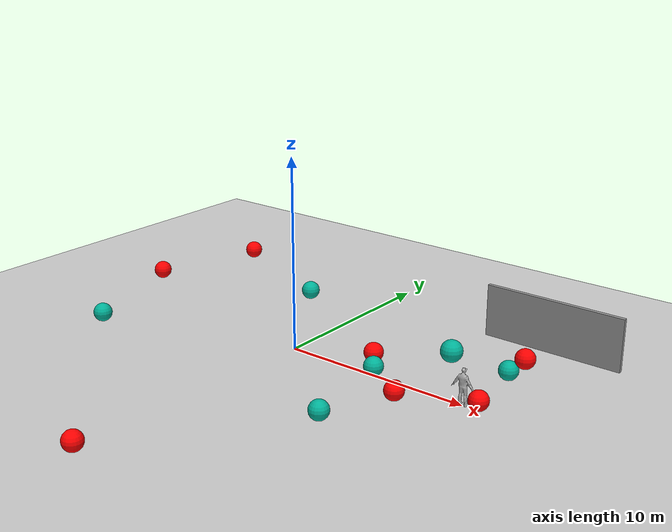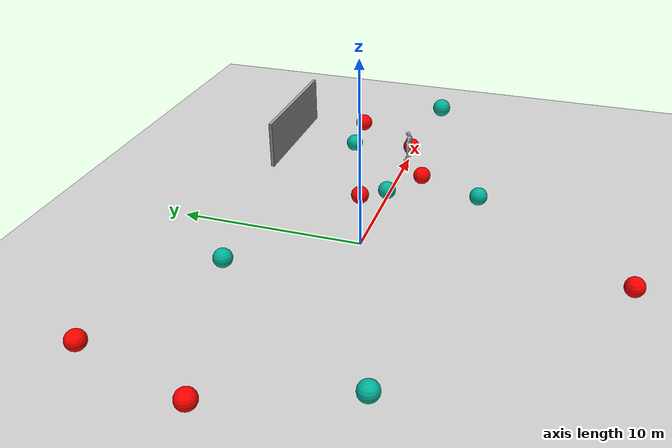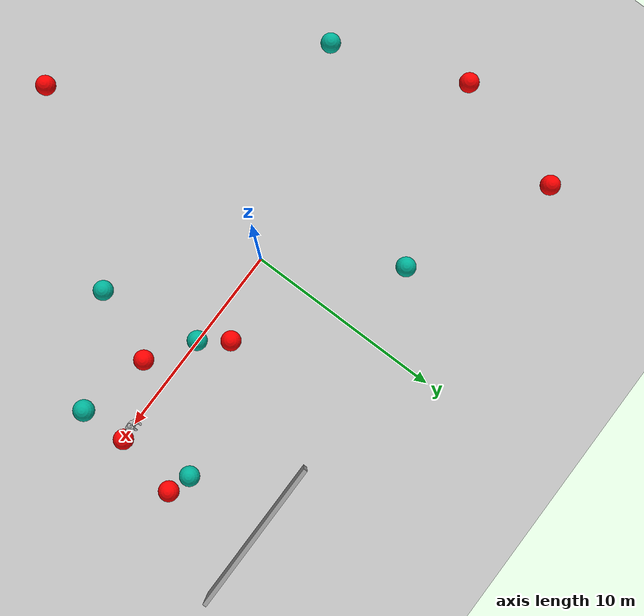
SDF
<sdf version="1.6">
 <world name="default">
  <light name="sun" type="directional">
   <pose>0 0 10 0 -0 0</pose>
   <diffuse>0.8 0.8 0.8 1</diffuse>
   <specular>0.2 0.2 0.2 1</specular>
   <attenuation>
    <range>1000</range>
    <constant>0.9</constant>
    <linear>0.01</linear>
    <quadratic>0.001</quadratic>
   </attenuation>
   <direction>-0.5 0.1 -0.9</direction>
  </light>
  <model name="ground_plane">
   <static>1</static>
   <link name="link">
    <collision name="collision">
     <geometry><plane><normal>0 0 1</normal><size>100 100</size></plane></geometry>
     <surface><friction><ode><mu>100</mu><mu2>50</mu2></ode></friction></surface>
    </collision>
    <visual name="visual">
     <cast_shadows>0</cast_shadows>
     <geometry><plane><normal>0 0 1</normal><size>100 100</size></plane></geometry>
     <material>
      <script><uri>file://media/materials/scripts/gazebo.material</uri><name>Gazebo/Grey</name></script>
     </material>
    </visual>
    <velocity_decay><linear>0</linear><angular>0</angular></velocity_decay>
   </link>
  </model>
  <physics name="default_physics" default="0" type="ode">
   <max_step_size>0.001</max_step_size>
   <real_time_factor>1</real_time_factor>
   <real_time_update_rate>1000</real_time_update_rate>
  </physics>
  <scene><ambient>0.4 0.4 0.4 1</ambient><background>0.7 0.7 0.7 1</background><shadows>1</shadows></scene>
  <model name="grey_wall">
   <static>1</static>
   <link name="link">
    <pose>0 0 1.4 0 -0 0</pose>
    <collision name="collision"><geometry><box><size>7.5 0.2 2.8</size></box></geometry></collision>
    <visual name="visual">
     <cast_shadows>0</cast_shadows>
     <geometry><box><size>7.5 0.2 2.8</size></box></geometry>
     <material>
      <script>
       <uri>model://grey_wall/materials/scripts</uri>
       <uri>model://grey_wall/materials/textures</uri>
       <name>vrc/grey_wall</name>
      </script>
     </material>
    </visual>
    <velocity_decay><linear>0</linear><angular>0</angular></velocity_decay>
   </link>
   <pose>10.402 7.71769 0 0 -0 0</pose>
  </model>
  <model name="worker1">
   <static>1</static>
   <link name="worker1">
    <collision name="collision">
     <geometry><mesh><uri>model://worker1/worker1.dae</uri><scale>1 1 1</scale></mesh></geometry>
    </collision>
    <visual name="visual">
     <geometry><mesh><uri>model://worker1/worker1.dae</uri><scale>1 1 1</scale></mesh></geometry>
    </visual>
    <velocity_decay><linear>0</linear><angular>0</angular></velocity_decay>
   </link>
   <pose>10 0 0 0 -0 0</pose>
  </model>
  <gravity>0 0 -9.8</gravity>
  <magnetic_field>6e-06 2.3e-05 -4.2e-05</magnetic_field>
  <atmosphere type="adiabatic"/>
  <spherical_coordinates>
   <surface_model>EARTH_WGS84</surface_model>
   <latitude_deg>0</latitude_deg>
   <longitude_deg>0</longitude_deg>
   <elevation>0</elevation>
   <heading_deg>0</heading_deg>
  </spherical_coordinates>
  <model name="Target_1">
   <link name="link">
    <inertial>
     <mass>1</mass>
     <inertia><ixx>0.1</ixx><ixy>0</ixy><ixz>0</ixz><iyy>0.1</iyy><iyz>0</iyz><izz>0.1</izz></inertia>
    </inertial>
    <visual name="visual">
     <geometry><sphere><radius>0.5</radius></sphere></geometry>
     <material>
      <script><name>Gazebo/Grey</name><uri>file://media/materials/scripts/gazebo.material</uri></script>
      <ambient>0 1 0 1</ambient>
      <diffuse>0 0.7 0.6 1</diffuse>
      <specular>0.01 0.01 0.01 1</specular>
      <emissive>0 0 0 1</emissive>
      <shader type="vertex"><normal_map>__default__</normal_map></shader>
     </material>
    </visual>
    <collision name="collision">
     <geometry><sphere><radius>0.5</radius></sphere></geometry>
     <surface>
      <friction>
       <ode><mu>1</mu><mu2>1</mu2><fdir1>0 0 0</fdir1><slip1>0</slip1><slip2>0</slip2></ode>
       <torsional>
        <coefficient>1</coefficient>
        <patch_radius>0</patch_radius>
        <surface_radius>0</surface_radius>
        <use_patch_radius>1</use_patch_radius>
        <ode><slip>0</slip></ode>
       </torsional>
      </friction>
      <bounce><restitution_coefficient>0</restitution_coefficient><threshold>1e+06</threshold></bounce>
      <contact>
       <collide_without_contact>0</collide_without_contact>
       <collide_without_contact_bitmask>1</collide_without_contact_bitmask>
       <collide_bitmask>1</collide_bitmask>
       <ode>
        <soft_cfm>0</soft_cfm>
        <soft_erp>0.2</soft_erp>
        <kp>1e+13</kp>
        <kd>1</kd>
        <max_vel>0.01</max_vel>
        <min_depth>0</min_depth>
       </ode>
       <bullet>
        <split_impulse>1</split_impulse>
        <split_impulse_penetration_threshold>-0.01</split_impulse_penetration_threshold>
        <soft_cfm>0</soft_cfm>
        <soft_erp>0.2</soft_erp>
        <kp>1e+13</kp>
        <kd>1</kd>
       </bullet>
      </contact>
     </surface>
    </collision>
   </link>
   <static>0</static>
   <pose>5.0 0.0 0.5 0 -0 0</pose>
  </model>
  <model name="Target_2">
   <link name="link">
    <inertial>
     <mass>1</mass>
     <inertia><ixx>0.1</ixx><ixy>0</ixy><ixz>0</ixz><iyy>0.1</iyy><iyz>0</iyz><izz>0.1</izz></inertia>
    </inertial>
    <visual name="visual">
     <geometry><sphere><radius>0.5</radius></sphere></geometry>
     <material>
      <script><name>Gazebo/Grey</name><uri>file://media/materials/scripts/gazebo.material</uri></script>
      <ambient>0 1 0 1</ambient>
      <diffuse>0 0.7 0.6 1</diffuse>
      <specular>0.01 0.01 0.01 1</specular>
      <emissive>0 0 0 1</emissive>
      <shader type="vertex"><normal_map>__default__</normal_map></shader>
     </material>
    </visual>
    <collision name="collision">
     <geometry><sphere><radius>0.5</radius></sphere></geometry>
     <surface>
      <friction>
       <ode><mu>1</mu><mu2>1</mu2><fdir1>0 0 0</fdir1><slip1>0</slip1><slip2>0</slip2></ode>
       <torsional>
        <coefficient>1</coefficient>
        <patch_radius>0</patch_radius>
        <surface_radius>0</surface_radius>
        <use_patch_radius>1</use_patch_radius>
        <ode><slip>0</slip></ode>
       </torsional>
      </friction>
      <bounce><restitution_coefficient>0</restitution_coefficient><threshold>1e+06</threshold></bounce>
      <contact>
       <collide_without_contact>0</collide_without_contact>
       <collide_without_contact_bitmask>1</collide_without_contact_bitmask>
       <collide_bitmask>1</collide_bitmask>
       <ode>
        <soft_cfm>0</soft_cfm>
        <soft_erp>0.2</soft_erp>
        <kp>1e+13</kp>
        <kd>1</kd>
        <max_vel>0.01</max_vel>
        <min_depth>0</min_depth>
       </ode>
       <bullet>
        <split_impulse>1</split_impulse>
        <split_impulse_penetration_threshold>-0.01</split_impulse_penetration_threshold>
        <soft_cfm>0</soft_cfm>
        <soft_erp>0.2</soft_erp>
        <kp>1e+13</kp>
        <kd>1</kd>
       </bullet>
      </contact>
     </surface>
    </collision>
   </link>
   <static>0</static>
   <pose>-3.87054 5.85221 0.5 0 -0 0</pose>
  </model>
  <model name="Target_3">
   <link name="link">
    <inertial>
     <mass>1</mass>
     <inertia><ixx>0.1</ixx><ixy>0</ixy><ixz>0</ixz><iyy>0.1</iyy><iyz>0</iyz><izz>0.1</izz></inertia>
    </inertial>
    <visual name="visual">
     <geometry><sphere><radius>0.5</radius></sphere></geometry>
     <material>
      <script><name>Gazebo/Grey</name><uri>file://media/materials/scripts/gazebo.material</uri></script>
      <ambient>0 1 0 1</ambient>
      <diffuse>0 0.7 0.6 1</diffuse>
      <specular>0.01 0.01 0.01 1</specular>
      <emissive>0 0 0 1</emissive>
      <shader type="vertex"><normal_map>__default__</normal_map></shader>
     </material>
    </visual>
    <collision name="collision">
     <geometry><sphere><radius>0.5</radius></sphere></geometry>
     <surface>
      <friction>
       <ode><mu>1</mu><mu2>1</mu2><fdir1>0 0 0</fdir1><slip1>0</slip1><slip2>0</slip2></ode>
       <torsional>
        <coefficient>1</coefficient>
        <patch_radius>0</patch_radius>
        <surface_radius>0</surface_radius>
        <use_patch_radius>1</use_patch_radius>
        <ode><slip>0</slip></ode>
       </torsional>
      </friction>
      <bounce><restitution_coefficient>0</restitution_coefficient><threshold>1e+06</threshold></bounce>
      <contact>
       <collide_without_contact>0</collide_without_contact>
       <collide_without_contact_bitmask>1</collide_without_contact_bitmask>
       <collide_bitmask>1</collide_bitmask>
       <ode>
        <soft_cfm>0</soft_cfm>
        <soft_erp>0.2</soft_erp>
        <kp>1e+13</kp>
        <kd>1</kd>
        <max_vel>0.01</max_vel>
        <min_depth>0</min_depth>
       </ode>
       <bullet>
        <split_impulse>1</split_impulse>
        <split_impulse_penetration_threshold>-0.01</split_impulse_penetration_threshold>
        <soft_cfm>0</soft_cfm>
        <soft_erp>0.2</soft_erp>
        <kp>1e+13</kp>
        <kd>1</kd>
       </bullet>
      </contact>
     </surface>
    </collision>
   </link>
   <static>0</static>
   <pose>10.3064 3.62592 0.5 0 -0 0</pose>
  </model>
  <model name="Target_4">
   <link name="link">
    <inertial>
     <mass>1</mass>
     <inertia><ixx>0.1</ixx><ixy>0</ixy><ixz>0</ixz><iyy>0.1</iyy><iyz>0</iyz><izz>0.1</izz></inertia>
    </inertial>
    <visual name="visual">
     <geometry><sphere><radius>0.5</radius></sphere></geometry>
     <material>
      <script><name>Gazebo/Grey</name><uri>file://media/materials/scripts/gazebo.material</uri></script>
      <ambient>0 1 0 1</ambient>
      <diffuse>0 0.7 0.6 1</diffuse>
      <specular>0.01 0.01 0.01 1</specular>
      <emissive>0 0 0 1</emissive>
      <shader type="vertex"><normal_map>__default__</normal_map></shader>
     </material>
    </visual>
    <collision name="collision">
     <geometry><sphere><radius>0.5</radius></sphere></geometry>
     <surface>
      <friction>
       <ode><mu>1</mu><mu2>1</mu2><fdir1>0 0 0</fdir1><slip1>0</slip1><slip2>0</slip2></ode>
       <torsional>
        <coefficient>1</coefficient>
        <patch_radius>0</patch_radius>
        <surface_radius>0</surface_radius>
        <use_patch_radius>1</use_patch_radius>
        <ode><slip>0</slip></ode>
       </torsional>
      </friction>
      <bounce><restitution_coefficient>0</restitution_coefficient><threshold>1e+06</threshold></bounce>
      <contact>
       <collide_without_contact>0</collide_without_contact>
       <collide_without_contact_bitmask>1</collide_without_contact_bitmask>
       <collide_bitmask>1</collide_bitmask>
       <ode>
        <soft_cfm>0</soft_cfm>
        <soft_erp>0.2</soft_erp>
        <kp>1e+13</kp>
        <kd>1</kd>
        <max_vel>0.01</max_vel>
        <min_depth>0</min_depth>
       </ode>
       <bullet>
        <split_impulse>1</split_impulse>
        <split_impulse_penetration_threshold>-0.01</split_impulse_penetration_threshold>
        <soft_cfm>0</soft_cfm>
        <soft_erp>0.2</soft_erp>
        <kp>1e+13</kp>
        <kd>1</kd>
       </bullet>
      </contact>
     </surface>
    </collision>
   </link>
   <static>0</static>
   <pose>5.80867 -5.06671 0.5 0 -0 0</pose>
  </model>
  <model name="Target_5">
   <link name="link">
    <inertial>
     <mass>1</mass>
     <inertia><ixx>0.1</ixx><ixy>0</ixy><ixz>0</ixz><iyy>0.1</iyy><iyz>0</iyz><izz>0.1</izz></inertia>
    </inertial>
    <visual name="visual">
     <geometry><sphere><radius>0.5</radius></sphere></geometry>
     <material>
      <script><name>Gazebo/Grey</name><uri>file://media/materials/scripts/gazebo.material</uri></script>
      <ambient>0 1 0 1</ambient>
      <diffuse>0 0.7 0.6 1</diffuse>
      <specular>0.01 0.01 0.01 1</specular>
      <emissive>0 0 0 1</emissive>
      <shader type="vertex"><normal_map>__default__</normal_map></shader>
     </material>
    </visual>
    <collision name="collision">
     <geometry><sphere><radius>0.5</radius></sphere></geometry>
     <surface>
      <friction>
       <ode><mu>1</mu><mu2>1</mu2><fdir1>0 0 0</fdir1><slip1>0</slip1><slip2>0</slip2></ode>
       <torsional>
        <coefficient>1</coefficient>
        <patch_radius>0</patch_radius>
        <surface_radius>0</surface_radius>
        <use_patch_radius>1</use_patch_radius>
        <ode><slip>0</slip></ode>
       </torsional>
      </friction>
      <bounce><restitution_coefficient>0</restitution_coefficient><threshold>1e+06</threshold></bounce>
      <contact>
       <collide_without_contact>0</collide_without_contact>
       <collide_without_contact_bitmask>1</collide_without_contact_bitmask>
       <collide_bitmask>1</collide_bitmask>
       <ode>
        <soft_cfm>0</soft_cfm>
        <soft_erp>0.2</soft_erp>
        <kp>1e+13</kp>
        <kd>1</kd>
        <max_vel>0.01</max_vel>
        <min_depth>0</min_depth>
       </ode>
       <bullet>
        <split_impulse>1</split_impulse>
        <split_impulse_penetration_threshold>-0.01</split_impulse_penetration_threshold>
        <soft_cfm>0</soft_cfm>
        <soft_erp>0.2</soft_erp>
        <kp>1e+13</kp>
        <kd>1</kd>
       </bullet>
      </contact>
     </surface>
    </collision>
   </link>
   <static>0</static>
   <pose>-10.5338 -3.67822 0.5 0 -0 0</pose>
  </model>
  <model name="Target_6">
   <link name="link">
    <inertial>
     <mass>1</mass>
     <inertia><ixx>0.1</ixx><ixy>0</ixy><ixz>0</ixz><iyy>0.1</iyy><iyz>0</iyz><izz>0.1</izz></inertia>
    </inertial>
    <visual name="visual">
     <geometry><sphere><radius>0.5</radius></sphere></geometry>
     <material>
      <script><name>Gazebo/Grey</name><uri>file://media/materials/scripts/gazebo.material</uri></script>
      <ambient>0 1 0 1</ambient>
      <diffuse>0 0.7 0.6 1</diffuse>
      <specular>0.01 0.01 0.01 1</specular>
      <emissive>0 0 0 1</emissive>
      <shader type="vertex"><normal_map>__default__</normal_map></shader>
     </material>
    </visual>
    <collision name="collision">
     <geometry><sphere><radius>0.5</radius></sphere></geometry>
     <surface>
      <friction>
       <ode><mu>1</mu><mu2>1</mu2><fdir1>0 0 0</fdir1><slip1>0</slip1><slip2>0</slip2></ode>
       <torsional>
        <coefficient>1</coefficient>
        <patch_radius>0</patch_radius>
        <surface_radius>0</surface_radius>
        <use_patch_radius>1</use_patch_radius>
        <ode><slip>0</slip></ode>
       </torsional>
      </friction>
      <bounce><restitution_coefficient>0</restitution_coefficient><threshold>1e+06</threshold></bounce>
      <contact>
       <collide_without_contact>0</collide_without_contact>
       <collide_without_contact_bitmask>1</collide_without_contact_bitmask>
       <collide_bitmask>1</collide_bitmask>
       <ode>
        <soft_cfm>0</soft_cfm>
        <soft_erp>0.2</soft_erp>
        <kp>1e+13</kp>
        <kd>1</kd>
        <max_vel>0.01</max_vel>
        <min_depth>0</min_depth>
       </ode>
       <bullet>
        <split_impulse>1</split_impulse>
        <split_impulse_penetration_threshold>-0.01</split_impulse_penetration_threshold>
        <soft_cfm>0</soft_cfm>
        <soft_erp>0.2</soft_erp>
        <kp>1e+13</kp>
        <kd>1</kd>
       </bullet>
      </contact>
     </surface>
    </collision>
   </link>
   <static>0</static>
   <pose>10.4726 -1.79913 3.5 0 -0 0</pose>
  </model>
  <model name="unit_sphere_Red">
   <link name="link">
    <inertial>
     <mass>1</mass>
     <inertia><ixx>0.1</ixx><ixy>0</ixy><ixz>0</ixz><iyy>0.1</iyy><iyz>0</iyz><izz>0.1</izz></inertia>
    </inertial>
    <visual name="visual">
     <geometry><sphere><radius>0.5</radius></sphere></geometry>
     <material>
      <script><name>Gazebo/Grey</name><uri>file://media/materials/scripts/gazebo.material</uri></script>
      <ambient>1 0 0 1</ambient>
      <diffuse>1 0 0 1</diffuse>
      <specular>0.01 0.01 0.01 1</specular>
      <emissive>0 0 0 1</emissive>
      <shader type="vertex"><normal_map>__default__</normal_map></shader>
     </material>
    </visual>
    <collision name="collision">
     <geometry><sphere><radius>0.5</radius></sphere></geometry>
     <surface>
      <friction>
       <ode><mu>1</mu><mu2>1</mu2><fdir1>0 0 0</fdir1><slip1>0</slip1><slip2>0</slip2></ode>
       <torsional>
        <coefficient>1</coefficient>
        <patch_radius>0</patch_radius>
        <surface_radius>0</surface_radius>
        <use_patch_radius>1</use_patch_radius>
        <ode><slip>0</slip></ode>
       </torsional>
      </friction>
      <bounce><restitution_coefficient>0</restitution_coefficient><threshold>1e+06</threshold></bounce>
      <contact>
       <collide_without_contact>0</collide_without_contact>
       <collide_without_contact_bitmask>1</collide_without_contact_bitmask>
       <collide_bitmask>1</collide_bitmask>
       <ode>
        <soft_cfm>0</soft_cfm>
        <soft_erp>0.2</soft_erp>
        <kp>1e+13</kp>
        <kd>1</kd>
        <max_vel>0.01</max_vel>
        <min_depth>0</min_depth>
       </ode>
       <bullet>
        <split_impulse>1</split_impulse>
        <split_impulse_penetration_threshold>-0.01</split_impulse_penetration_threshold>
        <soft_cfm>0</soft_cfm>
        <soft_erp>0.2</soft_erp>
        <kp>1e+13</kp>
        <kd>1</kd>
       </bullet>
      </contact>
     </surface>
    </collision>
   </link>
   <static>0</static>
   <pose>4.0379 1.29683 0.5 0 -0 0</pose>
  </model>
  <model name="unit_sphere_Red_clone">
   <link name="link">
    <inertial>
     <mass>1</mass>
     <inertia><ixx>0.1</ixx><ixy>0</ixy><ixz>0</ixz><iyy>0.1</iyy><iyz>0</iyz><izz>0.1</izz></inertia>
    </inertial>
    <visual name="visual">
     <geometry><sphere><radius>0.5</radius></sphere></geometry>
     <material>
      <script><name>Gazebo/Grey</name><uri>file://media/materials/scripts/gazebo.material</uri></script>
      <ambient>1 0 0 1</ambient>
      <diffuse>1 0 0 1</diffuse>
      <specular>0.01 0.01 0.01 1</specular>
      <emissive>0 0 0 1</emissive>
      <shader type="vertex"><normal_map>__default__</normal_map></shader>
     </material>
    </visual>
    <collision name="collision">
     <geometry><sphere><radius>0.5</radius></sphere></geometry>
     <surface>
      <friction>
       <ode><mu>1</mu><mu2>1</mu2><fdir1>0 0 0</fdir1><slip1>0</slip1><slip2>0</slip2></ode>
       <torsional>
        <coefficient>1</coefficient>
        <patch_radius>0</patch_radius>
        <surface_radius>0</surface_radius>
        <use_patch_radius>1</use_patch_radius>
        <ode><slip>0</slip></ode>
       </torsional>
      </friction>
      <bounce><restitution_coefficient>0</restitution_coefficient><threshold>1e+06</threshold></bounce>
      <contact>
       <collide_without_contact>0</collide_without_contact>
       <collide_without_contact_bitmask>1</collide_without_contact_bitmask>
       <collide_bitmask>1</collide_bitmask>
       <ode>
        <soft_cfm>0</soft_cfm>
        <soft_erp>0.2</soft_erp>
        <kp>1e+13</kp>
        <kd>1</kd>
        <max_vel>0.01</max_vel>
        <min_depth>0</min_depth>
       </ode>
       <bullet>
        <split_impulse>1</split_impulse>
        <split_impulse_penetration_threshold>-0.01</split_impulse_penetration_threshold>
        <soft_cfm>0</soft_cfm>
        <soft_erp>0.2</soft_erp>
        <kp>1e+13</kp>
        <kd>1</kd>
       </bullet>
      </contact>
     </surface>
    </collision>
   </link>
   <static>0</static>
   <pose>7.27689 -1.46964 0.5 0 -0 0</pose>
  </model>
  <model name="unit_sphere_Red_clone_clone">
   <link name="link">
    <inertial>
     <mass>1</mass>
     <inertia><ixx>0.1</ixx><ixy>0</ixy><ixz>0</ixz><iyy>0.1</iyy><iyz>0</iyz><izz>0.1</izz></inertia>
    </inertial>
    <visual name="visual">
     <geometry><sphere><radius>0.5</radius></sphere></geometry>
     <material>
      <script><name>Gazebo/Grey</name><uri>file://media/materials/scripts/gazebo.material</uri></script>
      <ambient>1 0 0 1</ambient>
      <diffuse>1 0 0 1</diffuse>
      <specular>0.01 0.01 0.01 1</specular>
      <emissive>0 0 0 1</emissive>
      <shader type="vertex"><normal_map>__default__</normal_map></shader>
     </material>
    </visual>
    <collision name="collision">
     <geometry><sphere><radius>0.5</radius></sphere></geometry>
     <surface>
      <friction>
       <ode><mu>1</mu><mu2>1</mu2><fdir1>0 0 0</fdir1><slip1>0</slip1><slip2>0</slip2></ode>
       <torsional>
        <coefficient>1</coefficient>
        <patch_radius>0</patch_radius>
        <surface_radius>0</surface_radius>
        <use_patch_radius>1</use_patch_radius>
        <ode><slip>0</slip></ode>
       </torsional>
      </friction>
      <bounce><restitution_coefficient>0</restitution_coefficient><threshold>1e+06</threshold></bounce>
      <contact>
       <collide_without_contact>0</collide_without_contact>
       <collide_without_contact_bitmask>1</collide_without_contact_bitmask>
       <collide_bitmask>1</collide_bitmask>
       <ode>
        <soft_cfm>0</soft_cfm>
        <soft_erp>0.2</soft_erp>
        <kp>1e+13</kp>
        <kd>1</kd>
        <max_vel>0.01</max_vel>
        <min_depth>0</min_depth>
       </ode>
       <bullet>
        <split_impulse>1</split_impulse>
        <split_impulse_penetration_threshold>-0.01</split_impulse_penetration_threshold>
        <soft_cfm>0</soft_cfm>
        <soft_erp>0.2</soft_erp>
        <kp>1e+13</kp>
        <kd>1</kd>
       </bullet>
      </contact>
     </surface>
    </collision>
   </link>
   <static>0</static>
   <pose>-11.2886 9.05644 0.5 0 -0 0</pose>
  </model>
  <model name="unit_sphere_Blue">
   <link name="link">
    <inertial>
     <mass>1</mass>
     <inertia><ixx>0.1</ixx><ixy>0</ixy><ixz>0</ixz><iyy>0.1</iyy><iyz>0</iyz><izz>0.1</izz></inertia>
    </inertial>
    <visual name="ModelPreview_7::link::visual_1">
     <geometry><sphere><radius>0.5</radius></sphere></geometry>
     <material>
      <script><name>Gazebo/Grey</name><uri>file://media/materials/scripts/gazebo.material</uri></script>
      <ambient>1 0 1 1</ambient>
      <diffuse>1 0 0 1</diffuse>
      <specular>0.01 0.01 0.01 1</specular>
      <emissive>0 0 0 1</emissive>
      <shader type="vertex"><normal_map>__default__</normal_map></shader>
     </material>
    </visual>
    <visual name="visual">
     <geometry><sphere><radius>0.5</radius></sphere></geometry>
     <material>
      <script><name>Gazebo/Grey</name><uri>file://media/materials/scripts/gazebo.material</uri></script>
      <ambient>0 0 1 1</ambient>
      <diffuse>0 0 1 1</diffuse>
      <specular>0.01 0.01 0.01 1</specular>
      <emissive>0 0 0 1</emissive>
      <shader type="vertex"><normal_map>__default__</normal_map></shader>
     </material>
    </visual>
    <visual name="ModelPreview_7::link::visual_2">
     <geometry><sphere><radius>0.5</radius></sphere></geometry>
     <material>
      <script><name>Gazebo/Grey</name><uri>file://media/materials/scripts/gazebo.material</uri></script>
      <ambient>0 0 1 1</ambient>
      <diffuse>0 0 0 1</diffuse>
      <specular>0.01 0.01 0.01 1</specular>
      <emissive>0 0 0 1</emissive>
      <shader type="vertex"><normal_map>__default__</normal_map></shader>
     </material>
    </visual>
    <collision name="collision">
     <geometry><sphere><radius>0.5</radius></sphere></geometry>
     <surface>
      <friction>
       <ode><mu>1</mu><mu2>1</mu2><fdir1>0 0 0</fdir1><slip1>0</slip1><slip2>0</slip2></ode>
       <torsional>
        <coefficient>1</coefficient>
        <patch_radius>0</patch_radius>
        <surface_radius>0</surface_radius>
        <use_patch_radius>1</use_patch_radius>
        <ode><slip>0</slip></ode>
       </torsional>
      </friction>
      <bounce><restitution_coefficient>0</restitution_coefficient><threshold>1e+06</threshold></bounce>
      <contact>
       <collide_without_contact>0</collide_without_contact>
       <collide_without_contact_bitmask>1</collide_without_contact_bitmask>
       <collide_bitmask>1</collide_bitmask>
       <ode>
        <soft_cfm>0</soft_cfm>
        <soft_erp>0.2</soft_erp>
        <kp>1e+13</kp>
        <kd>1</kd>
        <max_vel>0.01</max_vel>
        <min_depth>0</min_depth>
       </ode>
       <bullet>
        <split_impulse>1</split_impulse>
        <split_impulse_penetration_threshold>-0.01</split_impulse_penetration_threshold>
        <soft_cfm>0</soft_cfm>
        <soft_erp>0.2</soft_erp>
        <kp>1e+13</kp>
        <kd>1</kd>
       </bullet>
      </contact>
     </surface>
    </collision>
   </link>
   <static>0</static>
   <pose>-13.023 2.91851 0.5 0 -0 0</pose>
  </model>
  <model name="unit_sphere_Blue_clone">
   <link name="link">
    <inertial>
     <mass>1</mass>
     <inertia><ixx>0.1</ixx><ixy>0</ixy><ixz>0</ixz><iyy>0.1</iyy><iyz>0</iyz><izz>0.1</izz></inertia>
    </inertial>
    <visual name="ModelPreview_7::link::visual_1">
     <geometry><sphere><radius>0.5</radius></sphere></geometry>
     <material>
      <script><name>Gazebo/Grey</name><uri>file://media/materials/scripts/gazebo.material</uri></script>
      <ambient>1 0 1 1</ambient>
      <diffuse>1 0 0 1</diffuse>
      <specular>0.01 0.01 0.01 1</specular>
      <emissive>0 0 0 1</emissive>
      <shader type="vertex"><normal_map>__default__</normal_map></shader>
     </material>
    </visual>
    <visual name="visual">
     <geometry><sphere><radius>0.5</radius></sphere></geometry>
     <material>
      <script><name>Gazebo/Grey</name><uri>file://media/materials/scripts/gazebo.material</uri></script>
      <ambient>0 0 1 1</ambient>
      <diffuse>0 0 1 1</diffuse>
      <specular>0.01 0.01 0.01 1</specular>
      <emissive>0 0 0 1</emissive>
      <shader type="vertex"><normal_map>__default__</normal_map></shader>
     </material>
    </visual>
    <visual name="ModelPreview_7::link::visual_2">
     <geometry><sphere><radius>0.5</radius></sphere></geometry>
     <material>
      <script><name>Gazebo/Grey</name><uri>file://media/materials/scripts/gazebo.material</uri></script>
      <ambient>0 0 1 1</ambient>
      <diffuse>0 0 0 1</diffuse>
      <specular>0.01 0.01 0.01 1</specular>
      <emissive>0 0 0 1</emissive>
      <shader type="vertex"><normal_map>__default__</normal_map></shader>
     </material>
    </visual>
    <collision name="collision">
     <geometry><sphere><radius>0.5</radius></sphere></geometry>
     <surface>
      <friction>
       <ode><mu>1</mu><mu2>1</mu2><fdir1>0 0 0</fdir1><slip1>0</slip1><slip2>0</slip2></ode>
       <torsional>
        <coefficient>1</coefficient>
        <patch_radius>0</patch_radius>
        <surface_radius>0</surface_radius>
        <use_patch_radius>1</use_patch_radius>
        <ode><slip>0</slip></ode>
       </torsional>
      </friction>
      <bounce><restitution_coefficient>0</restitution_coefficient><threshold>1e+06</threshold></bounce>
      <contact>
       <collide_without_contact>0</collide_without_contact>
       <collide_without_contact_bitmask>1</collide_without_contact_bitmask>
       <collide_bitmask>1</collide_bitmask>
       <ode>
        <soft_cfm>0</soft_cfm>
        <soft_erp>0.2</soft_erp>
        <kp>1e+13</kp>
        <kd>1</kd>
        <max_vel>0.01</max_vel>
        <min_depth>0</min_depth>
       </ode>
       <bullet>
        <split_impulse>1</split_impulse>
        <split_impulse_penetration_threshold>-0.01</split_impulse_penetration_threshold>
        <soft_cfm>0</soft_cfm>
        <soft_erp>0.2</soft_erp>
        <kp>1e+13</kp>
        <kd>1</kd>
       </bullet>
      </contact>
     </surface>
    </collision>
   </link>
   <static>0</static>
   <pose>10.8277 0.068744 0.5 0 -0 0</pose>
  </model>
  <model name="unit_sphere_Blue_clone_0">
   <link name="link">
    <inertial>
     <mass>1</mass>
     <inertia><ixx>0.1</ixx><ixy>0</ixy><ixz>0</ixz><iyy>0.1</iyy><iyz>0</iyz><izz>0.1</izz></inertia>
    </inertial>
    <visual name="ModelPreview_7::link::visual_1">
     <geometry><sphere><radius>0.5</radius></sphere></geometry>
     <material>
      <script><name>Gazebo/Grey</name><uri>file://media/materials/scripts/gazebo.material</uri></script>
      <ambient>1 0 1 1</ambient>
      <diffuse>1 0 0 1</diffuse>
      <specular>0.01 0.01 0.01 1</specular>
      <emissive>0 0 0 1</emissive>
      <shader type="vertex"><normal_map>__default__</normal_map></shader>
     </material>
    </visual>
    <visual name="visual">
     <geometry><sphere><radius>0.5</radius></sphere></geometry>
     <material>
      <script><name>Gazebo/Grey</name><uri>file://media/materials/scripts/gazebo.material</uri></script>
      <ambient>0 0 1 1</ambient>
      <diffuse>0 0 1 1</diffuse>
      <specular>0.01 0.01 0.01 1</specular>
      <emissive>0 0 0 1</emissive>
      <shader type="vertex"><normal_map>__default__</normal_map></shader>
     </material>
    </visual>
    <visual name="ModelPreview_7::link::visual_2">
     <geometry><sphere><radius>0.5</radius></sphere></geometry>
     <material>
      <script><name>Gazebo/Grey</name><uri>file://media/materials/scripts/gazebo.material</uri></script>
      <ambient>0 0 1 1</ambient>
      <diffuse>0 0 0 1</diffuse>
      <specular>0.01 0.01 0.01 1</specular>
      <emissive>0 0 0 1</emissive>
      <shader type="vertex"><normal_map>__default__</normal_map></shader>
     </material>
    </visual>
    <collision name="collision">
     <geometry><sphere><radius>0.5</radius></sphere></geometry>
     <surface>
      <friction>
       <ode><mu>1</mu><mu2>1</mu2><fdir1>0 0 0</fdir1><slip1>0</slip1><slip2>0</slip2></ode>
       <torsional>
        <coefficient>1</coefficient>
        <patch_radius>0</patch_radius>
        <surface_radius>0</surface_radius>
        <use_patch_radius>1</use_patch_radius>
        <ode><slip>0</slip></ode>
       </torsional>
      </friction>
      <bounce><restitution_coefficient>0</restitution_coefficient><threshold>1e+06</threshold></bounce>
      <contact>
       <collide_without_contact>0</collide_without_contact>
       <collide_without_contact_bitmask>1</collide_without_contact_bitmask>
       <collide_bitmask>1</collide_bitmask>
       <ode>
        <soft_cfm>0</soft_cfm>
        <soft_erp>0.2</soft_erp>
        <kp>1e+13</kp>
        <kd>1</kd>
        <max_vel>0.01</max_vel>
        <min_depth>0</min_depth>
       </ode>
       <bullet>
        <split_impulse>1</split_impulse>
        <split_impulse_penetration_threshold>-0.01</split_impulse_penetration_threshold>
        <soft_cfm>0</soft_cfm>
        <soft_erp>0.2</soft_erp>
        <kp>1e+13</kp>
        <kd>1</kd>
       </bullet>
      </contact>
     </surface>
    </collision>
   </link>
   <static>0</static>
   <pose>-0.434958 -13.5173 0.5 0 -0 0</pose>
  </model>
  <model name="unit_sphere_Blue_clone_1">
   <link name="link">
    <inertial>
     <mass>1</mass>
     <inertia><ixx>0.1</ixx><ixy>0</ixy><ixz>0</ixz><iyy>0.1</iyy><iyz>0</iyz><izz>0.1</izz></inertia>
    </inertial>
    <visual name="ModelPreview_7::link::visual_1">
     <geometry><sphere><radius>0.5</radius></sphere></geometry>
     <material>
      <script><name>Gazebo/Grey</name><uri>file://media/materials/scripts/gazebo.material</uri></script>
      <ambient>1 0 1 1</ambient>
      <diffuse>1 0 0 1</diffuse>
      <specular>0.01 0.01 0.01 1</specular>
      <emissive>0 0 0 1</emissive>
      <shader type="vertex"><normal_map>__default__</normal_map></shader>
     </material>
    </visual>
    <visual name="visual">
     <geometry><sphere><radius>0.5</radius></sphere></geometry>
     <material>
      <script><name>Gazebo/Grey</name><uri>file://media/materials/scripts/gazebo.material</uri></script>
      <ambient>0 0 1 1</ambient>
      <diffuse>0 0 1 1</diffuse>
      <specular>0.01 0.01 0.01 1</specular>
      <emissive>0 0 0 1</emissive>
      <shader type="vertex"><normal_map>__default__</normal_map></shader>
     </material>
    </visual>
    <visual name="ModelPreview_7::link::visual_2">
     <geometry><sphere><radius>0.5</radius></sphere></geometry>
     <material>
      <script><name>Gazebo/Grey</name><uri>file://media/materials/scripts/gazebo.material</uri></script>
      <ambient>0 0 1 1</ambient>
      <diffuse>0 0 0 1</diffuse>
      <specular>0.01 0.01 0.01 1</specular>
      <emissive>0 0 0 1</emissive>
      <shader type="vertex"><normal_map>__default__</normal_map></shader>
     </material>
    </visual>
    <collision name="collision">
     <geometry><sphere><radius>0.5</radius></sphere></geometry>
     <surface>
      <friction>
       <ode><mu>1</mu><mu2>1</mu2><fdir1>0 0 0</fdir1><slip1>0</slip1><slip2>0</slip2></ode>
       <torsional>
        <coefficient>1</coefficient>
        <patch_radius>0</patch_radius>
        <surface_radius>0</surface_radius>
        <use_patch_radius>1</use_patch_radius>
        <ode><slip>0</slip></ode>
       </torsional>
      </friction>
      <bounce><restitution_coefficient>0</restitution_coefficient><threshold>1e+06</threshold></bounce>
      <contact>
       <collide_without_contact>0</collide_without_contact>
       <collide_without_contact_bitmask>1</collide_without_contact_bitmask>
       <collide_bitmask>1</collide_bitmask>
       <ode>
        <soft_cfm>0</soft_cfm>
        <soft_erp>0.2</soft_erp>
        <kp>1e+13</kp>
        <kd>1</kd>
        <max_vel>0.01</max_vel>
        <min_depth>0</min_depth>
       </ode>
       <bullet>
        <split_impulse>1</split_impulse>
        <split_impulse_penetration_threshold>-0.01</split_impulse_penetration_threshold>
        <soft_cfm>0</soft_cfm>
        <soft_erp>0.2</soft_erp>
        <kp>1e+13</kp>
        <kd>1</kd>
       </bullet>
      </contact>
     </surface>
    </collision>
   </link>
   <static>0</static>
   <pose>11.3058 3.3146 1.5 0 -0 0</pose>
  </model>
 </world>
</sdf>
